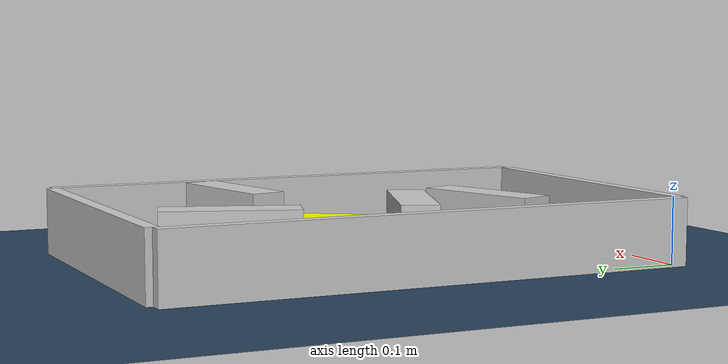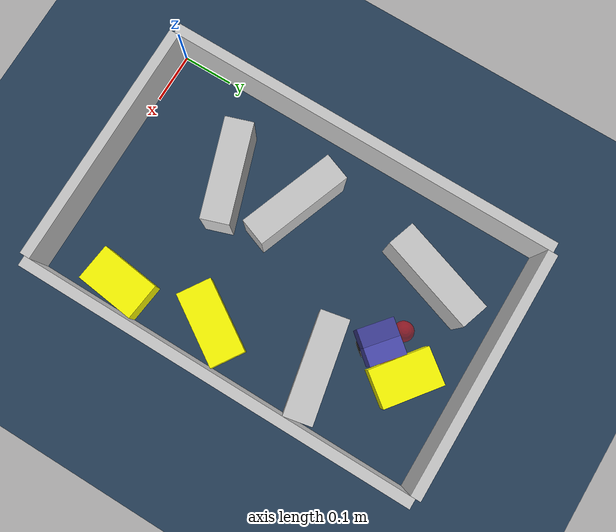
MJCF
<?xml version='1.0' encoding='utf-8'?>
<mujoco model="real_buildable">
  <compiler angle="degree" />
  <option timestep="0.002" integrator="implicitfast" iterations="100" cone="elliptic" />
  <default>
    <geom density="1" />
  </default>
  <asset>
    <texture builtin="gradient" height="3072" rgb1="0.3 0.5 0.7" rgb2="0 0 0" type="skybox" width="512" />
    <texture builtin="checker" height="300" mark="edge" markrgb="0.8 0.8 0.8" name="groundplane" rgb1="0.2 0.3 0.4" rgb2="0.1 0.2 0.3" type="2d" width="300" />
    <material name="groundplane" reflectance="0.2" texrepeat="5 5" texture="groundplane" texuniform="true" />
  </asset>
  <worldbody>
    <light dir="0 0 -1" directional="true" pos="0 0 1.5" />
    <geom name="floor" type="plane" condim="4" friction="0.5 0.005 0.001" material="groundplane" size="0 0 0.05" />
    <body name="walls">
      <geom name="wall_boundary_left" type="box" condim="4" friction="1.0 0.005 0.0001" rgba="0.8 0.8 0.8 1" pos="-0.010000 0.387500 0.050000" euler="0 0 0.000000" size="0.010000 0.397500 0.050000" />
      <geom name="wall_boundary_right" type="box" condim="4" friction="1.0 0.005 0.0001" rgba="0.8 0.8 0.8 1" pos="0.500000 0.387500 0.050000" euler="0 0 0.000000" size="0.010000 0.397500 0.050000" />
      <geom name="wall_boundary_bottom" type="box" condim="4" friction="1.0 0.005 0.0001" rgba="0.8 0.8 0.8 1" pos="0.245000 -0.010000 0.050000" euler="0 0 0.000000" size="0.245000 0.010000 0.050000" />
      <geom name="wall_boundary_top" type="box" condim="4" friction="1.0 0.005 0.0001" rgba="0.8 0.8 0.8 1" pos="0.245000 0.785000 0.050000" euler="0 0 0.000000" size="0.245000 0.010000 0.050000" />
      <geom name="wall_inner_1" type="box" condim="4" friction="1.0 0.005 0.0001" rgba="0.8 0.8 0.8 1" pos="0.171687 0.212678 0.050000" euler="0 0 18.562452" size="0.097500 0.027500 0.050000" />
      <geom name="wall_inner_2" type="box" condim="4" friction="1.0 0.005 0.0001" rgba="0.8 0.8 0.8 1" pos="0.153904 0.345009 0.050000" euler="0 0 -20.359852" size="0.097500 0.027500 0.050000" />
      <geom name="wall_inner_3" type="box" condim="4" friction="1.0 0.005 0.0001" rgba="0.8 0.8 0.8 1" pos="0.389000 0.531000 0.050000" euler="0 0 11.200000" size="0.097500 0.027500 0.050000" />
      <geom name="wall_inner_4" type="box" condim="4" friction="1.0 0.005 0.0001" rgba="0.8 0.8 0.8 1" pos="0.140000 0.630000 0.050000" euler="0 0 71.700000" size="0.097500 0.027500 0.050000" />
    </body>
    <body name="car" pos="0.29076768514583917 0.60685775061166347 0.01" quat="0.90492834084603169 0 0 0.42556397631102222">
      <freejoint name="car_freejoint" />
      <inertial pos="0 0 0.0375" mass="0.35" diaginertia="0.000266 0.000266 0.000286" />
      <geom name="front_chassis_collision" type="box" pos="0.0175 0 0.0375" size="0.0175 0.035 0.0325" rgba="0.3 0.3 0.7 1" />
      <geom name="rear_chassis_collision" type="box" pos="-0.0175 0 0.0375" size="0.0175 0.035 0.0325" rgba="0.25 0.25 0.6 1" />
      <geom name="front_marker" type="box" pos="0.034 0 0.0505" size="0.002 0.015 0.01" rgba="1 0.2 0.2 1" contype="0" conaffinity="0" />
      <body name="rear_support_body" pos="-0.03 0 0.0025">
        <joint name="rear_caster_joint" type="ball" damping="0.0001" />
        <inertial pos="0 0 0" mass="0.025" diaginertia="0.000001 0.000001 0.000001" />
        <geom name="rear_support" type="sphere" pos="0 0 0" size="0.0025" friction="0 0 0" rgba="0.7 0.1 0.1 1" />
      </body>
      <body name="front_support_body" pos="0.03 0 0.0025">
        <joint name="front_caster_joint" type="ball" damping="0.0001" />
        <inertial pos="0 0 0" mass="0.025" diaginertia="0.000001 0.000001 0.000001" />
        <geom name="front_support" type="sphere" pos="0 0 0" size="0.0025" friction="0 0 0" rgba="0.1 0.7 0.1 1" />
      </body>
      <body name="left_wheel" pos="0 0.0375 0.015">
        <inertial pos="0 0 0" mass="0.05" diaginertia="0.000003 0.000006 0.000003" />
        <joint name="left_wheel_joint" type="hinge" axis="0 1 0" damping="0.01" armature="0.0001" />
        <geom name="left_wheel_collision" type="cylinder" size="0.015 0.0005" euler="90 0 0" rgba="0.1 0.1 0.1 1" />
      </body>
      <body name="right_wheel" pos="0 -0.0375 0.015">
        <inertial pos="0 0 0" mass="0.05" diaginertia="0.000003 0.000006 0.000003" />
        <joint name="right_wheel_joint" type="hinge" axis="0 1 0" damping="0.01" armature="0.0001" />
        <geom name="right_wheel_collision" type="cylinder" size="0.015 0.0005" euler="90 0 0" rgba="0.1 0.1 0.1 1" />
      </body>
    </body>
    <body name="obstacle_0_movable">
      <geom name="obstacle_0_movable" condim="4" pos="0.41977416684379565 0.32573097305799054 0.02" friction="1 0.005 0.0001" rgba="1 1 0 1" size="0.035000 0.075000 0.020000" type="box" mass="0.1" quat="0.2842784837973048 0 0 0.95874175023825137" />
      <joint type="free" />
    </body>
    <body name="obstacle_1_movable">
      <geom name="obstacle_1_movable" condim="4" pos="0.32024508023115872 0.67960263015020028 0.025000000000000001" friction="1 0.005 0.0001" rgba="1 1 0 1" size="0.037500 0.060000 0.025000" type="box" mass="0.1" quat="0.89724972508781387 0 0 0.44152342047715037" />
      <joint type="free" />
    </body>
    <body name="obstacle_2_movable">
      <geom name="obstacle_2_movable" condim="4" pos="0.44506200000000151 0.14170499999999964 0.025000000000000001" friction="1 0.005 0.0001" rgba="1 1 0 1" size="0.037500 0.060000 0.025000" type="box" mass="0.1" quat="0.063080366581694719 0 0 0.99800845054133636" />
      <joint type="free" />
    </body>
    <site name="goal" type="sphere" pos="0.245000 0.640000 0.0" size="0.02" rgba="1 0 0 0.5" />
  </worldbody>
  <actuator>
    <velocity name="left_wheel_drive" joint="left_wheel_joint" ctrlrange="-25 25" kv="0.75" forcerange="-0.5 0.5" />
    <velocity name="right_wheel_drive" joint="right_wheel_joint" ctrlrange="-25 25" kv="0.75" forcerange="-0.5 0.5" />
  </actuator>
</mujoco>
